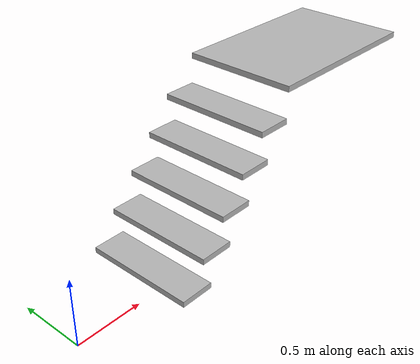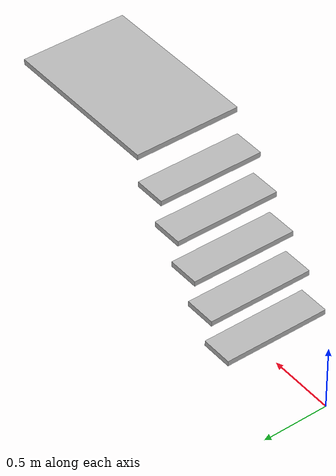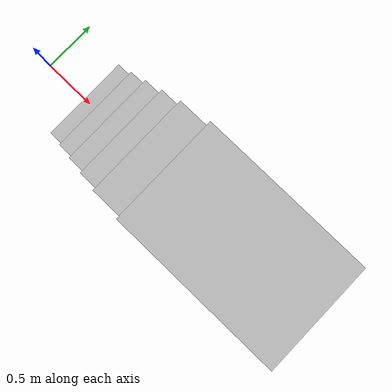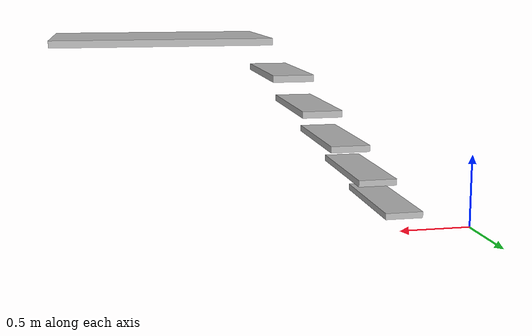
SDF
<?xml version='1.0'?>
<sdf version='1.4'>
  <model name="stairs_steep">
    <static>true</static>
    <pose>0.5 0 0 0 0 0</pose>

    <link name='step_1'>
      <pose>0.12 0 0.225 0 0 0</pose>
      <collision name='collision'>
        <geometry>
          <box>
            <size>0.24 0.8 0.04</size>
          </box>
        </geometry>
      </collision>
      <visual name='visual'>
        <geometry>
          <box>
            <size>0.24 0.8 0.04</size>
          </box>
        </geometry>
      </visual>
    </link>

    <link name='step_2'>
      <pose>0.295 0 0.44 0 0 0</pose>
      <collision name='collision'>
        <geometry>
          <box>
            <size>0.24 0.8 0.04</size>
          </box>
        </geometry>
      </collision>
      <visual name='visual'>
        <geometry>
          <box>
            <size>0.24 0.8 0.04</size>
          </box>
        </geometry>
      </visual>
    </link>

    <link name='step_3'>
      <pose>0.47 0 0.655 0 0 0</pose>
      <collision name='collision'>
        <geometry>
          <box>
            <size>0.24 0.8 0.04</size>
          </box>
        </geometry>
      </collision>
      <visual name='visual'>
        <geometry>
          <box>
            <size>0.24 0.8 0.04</size>
          </box>
        </geometry>
      </visual>
    </link>

    <link name='step_4'>
      <pose>0.645 0 0.87 0 0 0</pose>
      <collision name='collision'>
        <geometry>
          <box>
            <size>0.24 0.8 0.04</size>
          </box>
        </geometry>
      </collision>
      <visual name='visual'>
        <geometry>
          <box>
            <size>0.24 0.8 0.04</size>
          </box>
        </geometry>
      </visual>
    </link>

    <link name='step_5'>
      <pose>0.82 0 1.085 0 0 0</pose>
      <collision name='collision'>
        <geometry>
          <box>
            <size>0.24 0.8 0.04</size>
          </box>
        </geometry>
      </collision>
      <visual name='visual'>
        <geometry>
          <box>
            <size>0.24 0.8 0.04</size>
          </box>
        </geometry>
      </visual>
    </link>

    <link name='top'>
      <pose>1.565 0 1.3 0 0 0</pose>
      <collision name='collision'>
        <geometry>
          <box>
            <size>1.24 0.8 0.04</size>
          </box>
        </geometry>
      </collision>
      <visual name='visual'>
        <geometry>
          <box>
            <size>1.24 0.8 0.04</size>
          </box>
        </geometry>
      </visual>
    </link>

  </model>
</sdf>
